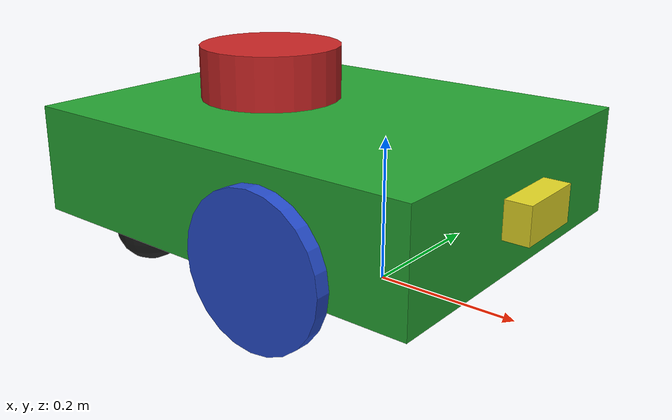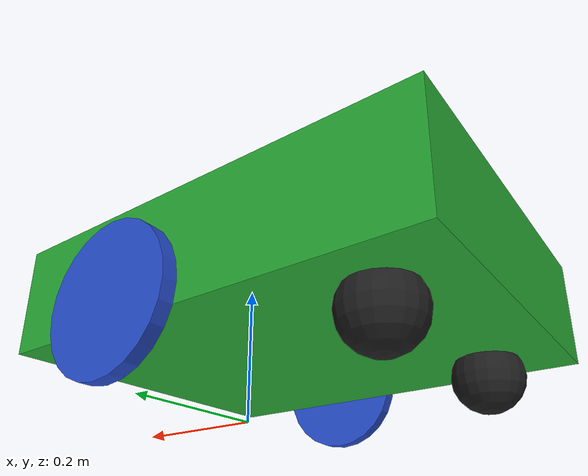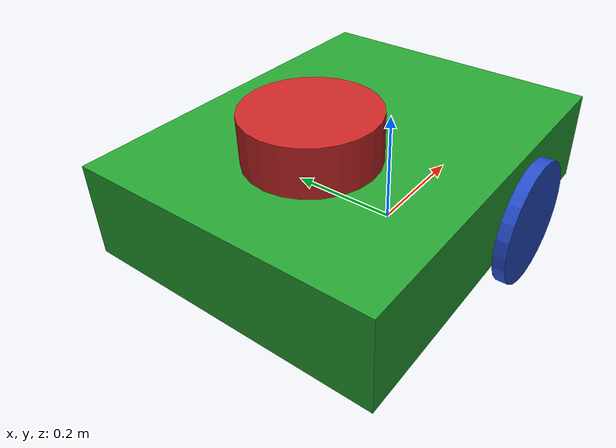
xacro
<?xml version="1.0"?>
<robot name = "my_ros_robot" xmlns:xacro="http://www.ros.org/wiki/xacro">

    <xacro:include filename="$(find my_ros_robot_description)/urdf/chassis.xacro"/>
    <xacro:include filename="$(find my_ros_robot_description)/urdf/properties.xacro"/>
    <xacro:include filename="$(find my_ros_robot_description)/urdf/wheel.xacro"/>

    <xacro:chassis/>
    <xacro:wheel name="left" translation="0 ${WHEEL_SEPARATION / 2} 0" rotation="0 0 0" parent="base_link"/>
    <xacro:wheel name="right" translation="0 ${-WHEEL_SEPARATION / 2} 0" rotation="0 0 0" parent="base_link"/>

</robot>

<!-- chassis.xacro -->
<robot name = "robot_chassis" xmlns:xacro="http://www.ros.org/wiki/xacro">

    <xacro:include filename="$(find my_ros_robot_description)/urdf/properties.xacro"/>

    <xacro:macro name="chassis" params="">

        <link name="base_footprint"/>

        <joint name="base_footprint_to_base_link" type="fixed">
            <parent link="base_footprint"/>
            <child link="base_link"/>
            <origin rpy="0 0 0" xyz="0 0 0.1"/>
        </joint>

        <joint name="base_link_to_caster" type="fixed">
            <parent link="base_link"/>
            <child link="caster"/>
            <origin rpy="0 0 0" xyz="-0.3 0 -0.05"/>
        </joint>

        <joint name="base_link_to_caster2" type="fixed">
            <parent link="base_link"/>
            <child link="caster2"/>
            <origin rpy="0 0 0" xyz="-0.3 0 -0.05"/>
        </joint>

        <joint name="base_link_to_camera_link" type="fixed">
            <parent link="base_link"/>
            <child link="camera_link"/>
            <origin rpy="0 0 0" xyz="0.21 0 0.05"/>
        </joint>

        <joint name="base_link_to_hokuyo_link" type="fixed">
            <parent link="base_link"/>
            <child link="hokuyo_link"/>
            <origin rpy="0 0 0" xyz="-0.2 0 0.15"/>
        </joint>

        <link name="base_link">
            <inertial>
                <origin rpy="0 0 0" xyz="${CHASSIS_COM}"/>
                <mass value="${CHASSIS_M}"/>
                <inertia ixx="${CHASSIS_Ixx}" ixy="${CHASSIS_Ixy}" ixz="${CHASSIS_Ixz}" iyy="${CHASSIS_Iyy}" iyz="${CHASSIS_Iyz}" izz="${CHASSIS_Izz}"/>
            </inertial>
            <visual>
                <origin rpy="0 0 0" xyz="-0.1 0 0.05" />
                <geometry>
                    <box size="0.6 ${WHEEL_SEPARATION-0.02} 0.15"/>
                </geometry>
            </visual>
            <collision>
                <origin rpy="0 0 0" xyz="-0.1 0 0.05" />
                <geometry>
                    <box size="0.6 ${WHEEL_SEPARATION-0.02} 0.15"/>
                </geometry>
            </collision>
        </link>

        <link name="caster">
            <visual>
                <origin rpy="0 0 0" xyz="0 0.15 0" />
                <geometry>
                    <sphere radius= "0.05"/>
                </geometry>
            </visual>
            <collision>
                <origin rpy="0 0 0" xyz="0 0 0" />
                <geometry>
                    <sphere radius= "0.05"/>
                </geometry>
            </collision>
        </link>

        <link name="caster2">
            <visual>
                <origin rpy="0 0 0" xyz="0 -0.15 0" />
                <geometry>
                    <sphere radius= "0.05"/>
                </geometry>
            </visual>
            <collision>
                <origin rpy="0 0 0" xyz="0 -0.15 0" />
                <geometry>
                    <sphere radius= "0.05"/>
                </geometry>
            </collision>
        </link>

        <link name="camera_link">
            <inertial>
                <origin rpy="0 0 0" xyz="0 0 0"/>
                <mass value="0.1"/>
                <inertia ixx="0.001" ixy="0.001" ixz="0.001" iyy="0.001" iyz="0.001" izz="0.001"/>
            </inertial>
            <visual>
                <origin rpy="0 0 0" xyz="0 0 0" />
                <geometry>
                    <box size="0.05 0.1 0.05"/>
                </geometry>
            </visual>
            <collision>
                <origin rpy="0 0 0" xyz="0 0 0" />
                <geometry>
                    <box size="0.05 0.1 0.05"/>
                </geometry>
            </collision>
        </link>

        <link name="hokuyo_link">
            <inertial>
                <origin rpy="0 0 0" xyz="0 0 0"/>
                <mass value="0.2"/>
                <inertia ixx="0.001" ixy="0.001" ixz="0.001" iyy="0.001" iyz="0.001" izz="0.001"/>
            </inertial>
            <visual>
                <origin rpy="0 0 0" xyz="0 0 0" />
                <geometry>
                    <cylinder length="0.1"  radius = "0.1"/>
                </geometry>
            </visual>
        </link>

        <gazebo reference="caster">
            <mu1>0</mu1>
            <mu2>0</mu2>
            <material>Gazebo/Black</material>
        </gazebo>
        <gazebo reference="caster2">
            <mu1>0</mu1>
            <mu2>0</mu2>
            <material>Gazebo/Black</material>
        </gazebo>
        <gazebo reference="base_link">
            <mu1>0.3</mu1>
            <mu2>0.3</mu2>
            <material>Gazebo/Green</material>
        </gazebo>
        <gazebo reference="camera_link">
            <material>Gazebo/Yellow</material>
            <turnGravityOff>true</turnGravityOff>
            <sensor type="camera" name="camera1">
                <update_rate>30.0</update_rate>
                <camera name="head">
                    <horizontal_fov>1.3962634</horizontal_fov>
                    <image>
                    <width>800</width>
                    <height>800</height>
                    <format>R8G8B8</format>
                    </image>
                    <clip>
                    <near>0.02</near>
                    <far>300</far>
                    </clip>
                    <noise>
                    <type>gaussian</type>
                    <mean>0.0</mean>
                    <stddev>0.007</stddev>
                    </noise>
                </camera>
                <plugin name="camera_controller" filename="libgazebo_ros_camera.so">
                    <alwaysOn>true</alwaysOn>
                    <updateRate>0.0</updateRate>
                    <cameraName>rrbot/camera1</cameraName>
                    <imageTopicName>image_raw</imageTopicName>
                    <cameraInfoTopicName>camera_info</cameraInfoTopicName>
                    <frameName>camera_link</frameName>
                    <hackBaseline>0.07</hackBaseline>
                    <distortionK1>0.0</distortionK1>
                    <distortionK2>0.0</distortionK2>
                    <distortionK3>0.0</distortionK3>
                    <distortionT1>0.0</distortionT1>
                    <distortionT2>0.0</distortionT2>
                </plugin>
            </sensor>
        </gazebo>
        <gazebo reference="hokuyo_link">
            <material>Gazebo/Red</material>
            <turnGravityOff>true</turnGravityOff>
            <sensor type="ray" name="head_hokuyo_sensor">
                <pose> 0 0 0 0 0 0</pose>
                <visualize>true </visualize>
                <update_rate>40</update_rate>
                <ray>
                    <scan>
                    <horizontal>
                        <samples>720</samples>
                        <resolution>1</resolution>
                        <min_angle>-1.570796</min_angle>
                        <max_angle>1.570796</max_angle>
                    </horizontal>
                    </scan>
                    <range>
                    <min>0.10</min>
                    <max>10.0</max>
                    <resolution>0.001</resolution>
                    </range>
                </ray>
                <plugin name="gazebo_ros_head_hokuyo_controller" filename="libgazebo_ros_laser.so">
                    <topicName>/scan</topicName>
                    <frameName>hokuyo_link</frameName>
                </plugin>
            </sensor>
        </gazebo>
    </xacro:macro>

</robot>

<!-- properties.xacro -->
<robot xmlns:xacro="http://www.ros.org/wiki/xacro">

    <xacro:property name="PI" value="3.1415926535897931"/>
    <xacro:property name="WHEEL_RADIUS" value="0.1"/>

    <xacro:property name="U_MAX" value="10.0"/>
    <xacro:property name="V_MAX" value="20.0"/>
    <xacro:property name="WHEEL_JOINT_DAMP" value="0.3"/>
    <xacro:property name="WHEEL_SEPARATION" value="0.5"/>

    <!-- Inertial -->
    <xacro:property name="CHASSIS_COM" value="-0.01 0 -0.05"/>
    <xacro:property name="CHASSIS_M" value="3"/>
    <xacro:property name="CHASSIS_Ixx" value="0.009607873"/>
    <xacro:property name="CHASSIS_Iyy" value="0.010242986"/>
    <xacro:property name="CHASSIS_Izz" value="0.009654254"/>
    <xacro:property name="CHASSIS_Ixy" value="0.00018491"/>
    <xacro:property name="CHASSIS_Iyz" value="0.00027809"/>
    <xacro:property name="CHASSIS_Ixz" value="0.000352663"/>

    <xacro:property name="WHEEL_COM" value="0 0 0"/>
    <xacro:property name="WHEEL_M" value="0.21"/>
    <xacro:property name="WHEEL_Ixx" value="0.00012052"/>
    <xacro:property name="WHEEL_Iyy" value="0.0029397"/>
    <xacro:property name="WHEEL_Izz" value="0.00012052"/>
    <xacro:property name="WHEEL_Ixy" value="0.0"/>
    <xacro:property name="WHEEL_Iyz" value="0.0"/>
    <xacro:property name="WHEEL_Ixz" value="0.0"/>

</robot>

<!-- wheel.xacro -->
<robot name = "wheel" xmlns:xacro="http://www.ros.org/wiki/xacro">

    <xacro:include filename="$(find my_ros_robot_description)/urdf/properties.xacro"/>

    <xacro:macro name="wheel" params="name translation rotation parent">

        <gazebo>
            <plugin name="gazebo_ros_control" filename="libgazebo_ros_control.so">
                <robotNamespace>/my_robot</robotNamespace>
            </plugin>

            <plugin name="differential_drive_controller" filename="libgazebo_ros_diff_drive.so">
                <updateRate>100</updateRate>
                <leftJoint>left_wheel_joint</leftJoint>
                <rightJoint>right_wheel_joint</rightJoint>
                <wheelSeparation>${WHEEL_SEPARATION}</wheelSeparation>
                <wheelDiameter>0.2</wheelDiameter>
                <wheelAcceleration>0.0</wheelAcceleration>
                <wheelTorque>5</wheelTorque>
                <commandTopic>cmd_vel</commandTopic>
                <odometryTopic>odom</odometryTopic>
                <odometryFrame>odom</odometryFrame>
                <robotBaseFrame>base_footprint</robotBaseFrame>
                <odometrySource>1</odometrySource>
                <publishOdom>true</publishOdom>
                <publishWheelJointState>true</publishWheelJointState>
                <legacyMode>false</legacyMode>
            </plugin>

        </gazebo>

        <link name="${name}_wheel">
            <inertial>
                <origin rpy="0 0 0" xyz="${WHEEL_COM}"/>
                <mass value="${WHEEL_M}"/>
                <inertia ixx="${WHEEL_Ixx}" ixy="${WHEEL_Ixy}" ixz="${WHEEL_Ixz}" iyy="${WHEEL_Iyy}" iyz="${WHEEL_Iyz}" izz="${WHEEL_Izz}"/>
            </inertial>
            <visual>
                <origin rpy="${PI / 2} 0 0" xyz ="0 0 0" />
                <geometry>
                    <cylinder radius = "${WHEEL_RADIUS}" length = "0.02" />
                </geometry>
            </visual>
            <collision>
                <origin rpy="${PI / 2} 0 0" xyz ="0 0 0" />
                <geometry>
                    <cylinder radius = "${WHEEL_RADIUS}" length = "0.02" />
                </geometry>
            </collision>
        </link>

        <joint name="${name}_wheel_joint" type="continuous">
            <origin xyz="${translation}" rpy="${rotation}"/>
            <parent link="${parent}"/>
            <child link="${name}_wheel"/>
            <axis xyz ="0 1 0"/>
            <limit effort="${U_MAX}" velocity="${V_MAX}"/>
            <dynamics damping="${WHEEL_JOINT_DAMP}" />
        </joint>

        <gazebo reference="${name}_wheel">
            <mu1>1.0</mu1>
            <mu2>1.0</mu2>
            <material>Gazebo/Blue</material>
        </gazebo>

        <transmission name="${name}_wheel_trans">
            <type>transmission_interface/SimpleTransmission</type>
            <joint name="${name}_wheel_joint">
                <hardwareInterface>hardware_interface/EffortJointInterface</hardwareInterface>
            </joint>
            <actuator name="${name}_wheel_motor">
                <hardwareInterface>hardware_interface/EffortJointInterface</hardwareInterface>
                <mechanicalReduction>1</mechanicalReduction>
            </actuator>
        </transmission>

    </xacro:macro>

</robot>
